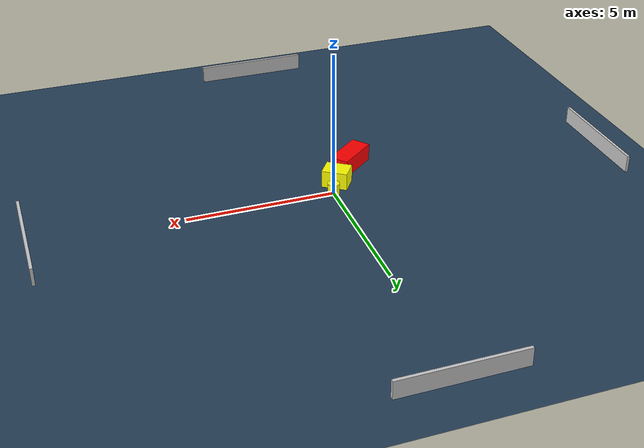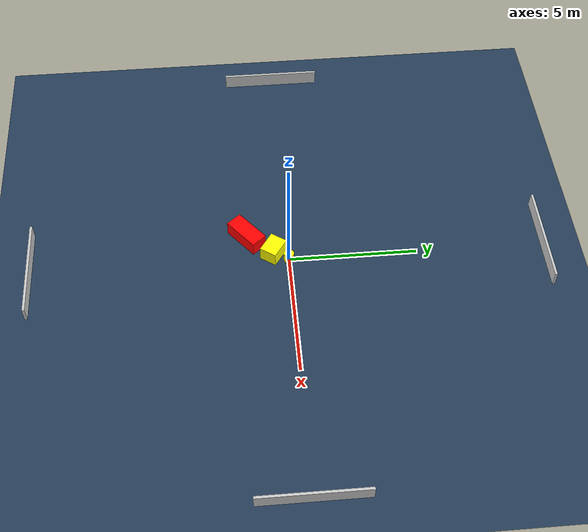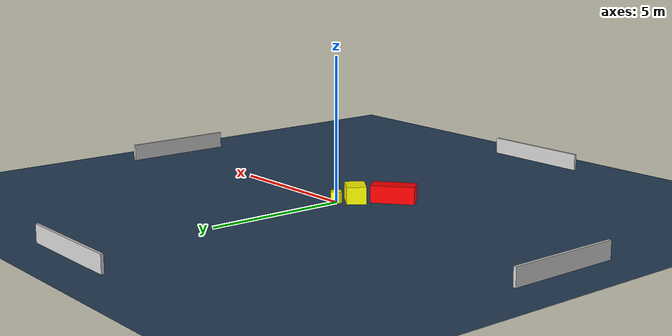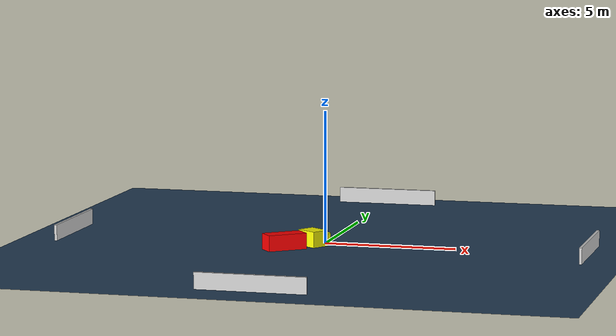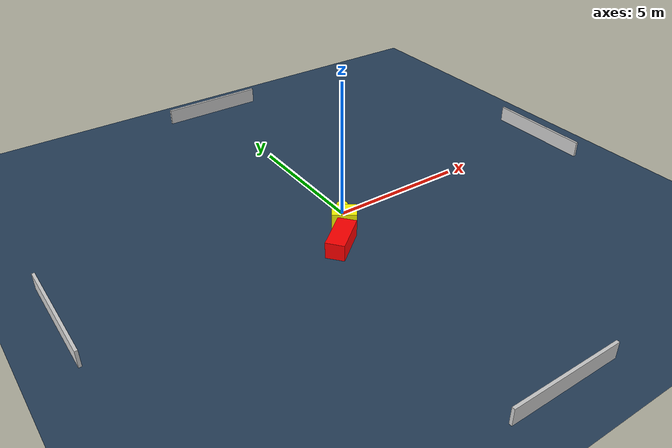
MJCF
<?xml version="1.0" ?>
<mujoco model="generated_environment">
  <option timestep="0.01" integrator="RK4" cone="elliptic"/>
  <default>
    <geom density="1"/>
  </default>
  <asset>
    <texture builtin="gradient" height="3072" name="skybox" rgb1="0.3 0.5 0.7" rgb2="0 0 0" type="skybox" width="512"/>
    <texture builtin="checker" height="300" name="groundplane" rgb1="0.2 0.3 0.4" rgb2="0.1 0.2 0.3" type="2d" width="300"/>
    <material name="groundplane" reflectance="0.2" texrepeat="5 5" texture="groundplane"/>
  </asset>
  <worldbody>
    <light dir="0 0 -1" directional="true" pos="0 0 1.5"/>
    <geom condim="3" friction="0.5 0.005 0.001" material="groundplane" name="floor" pos="0 0 0" size="0 0 0.05" type="plane"/>
    <body name="walls">
      <geom name="wall_1" condim="4" pos="-10.0 0.0 0.3" rgba="0.800000011920929 0.800000011920929 0.800000011920929 1.0" size="0.05 2.0 0.3" type="box"/>
      <geom name="wall_2" condim="4" pos="10.0 0.0 0.3" rgba="0.800000011920929 0.800000011920929 0.800000011920929 1.0" size="0.05 2.0 0.3" type="box"/>
      <geom name="wall_3" condim="4" pos="0.0 -10.0 0.3" rgba="0.800000011920929 0.800000011920929 0.800000011920929 1.0" size="2.0 0.05 0.3" type="box"/>
      <geom name="wall_4" condim="4" pos="0.0 10.0 0.3" rgba="0.800000011920929 0.800000011920929 0.800000011920929 1.0" size="2.0 0.05 0.3" type="box"/>
    </body>
    <body name="robot">
      <joint name="joint_x" type="slide" pos="0 0 0" axis="1 0 0"/>
      <joint name="joint_y" type="slide" pos="0 0 0" axis="0 1 0"/>
      <geom name="robot" type="cylinder" pos="0.0 0.0 0.2" size="0.2 0.2 0.0" mass="5.0" friction="1.0 0.005 0.0001" condim="4" rgba="1.0 1.0 0.0 1.0"/>
    </body>
    <body name="obstacle_1_movable">
      <geom name="obstacle_1_movable" condim="4" pos="-0.3194592653806302 -0.5779815796255349 0.3" euler="0 0 235.2380752049289" friction="0.0 0.005 0.001" rgba="1.0 1.0 0.0 1.0" size="0.3427103404796307 0.4357671725868576 0.3" type="box" mass="0.1"/>
      <joint type="free"/>
    </body>
    <body name="obstacle_2_static">
      <geom name="obstacle_2_static" condim="4" pos="-1.152815067806989 -1.578741589989826 0.3" euler="0 0 309.08452131406597" friction="0.0 0.005 0.001" rgba="1.0 0.0 0.0 1.0" size="0.3327464458049759 0.7542783156532171 0.3" type="box"/>
    </body>
  </worldbody>
  <actuator>
    <motor name="actuator_x" joint="joint_x" gear="1" ctrlrange="-1 1"/>
    <motor name="actuator_y" joint="joint_y" gear="1" ctrlrange="-1 1"/>
  </actuator>
</mujoco>
